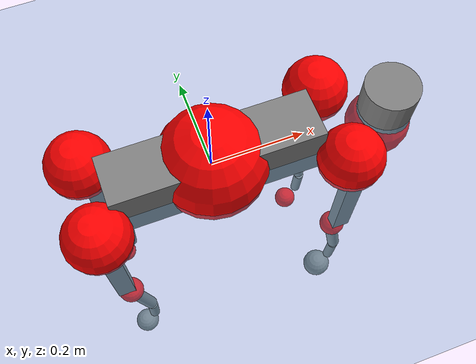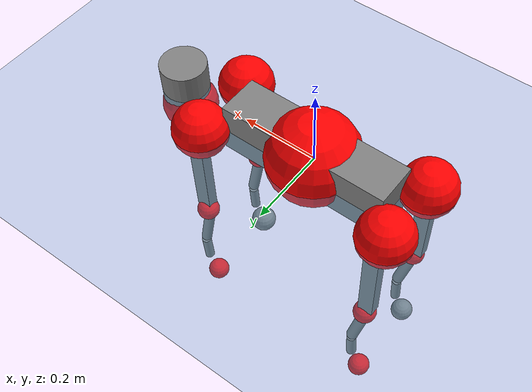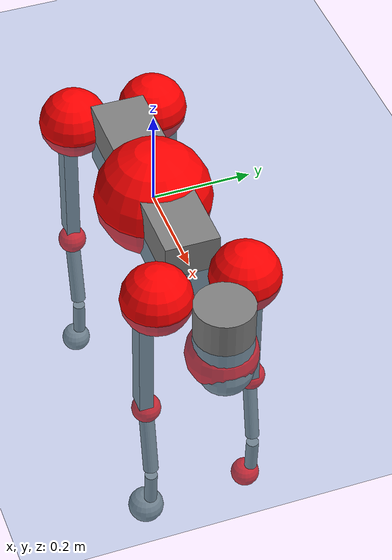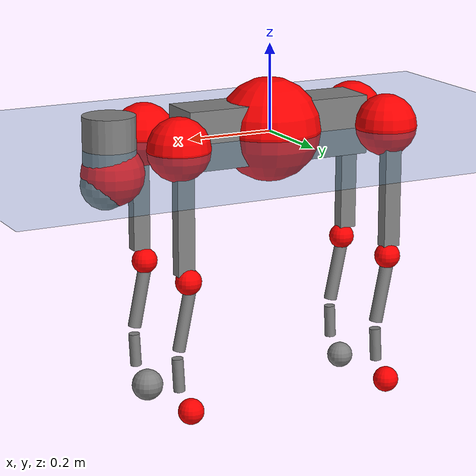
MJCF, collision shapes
<mujoco model="go2">
  <compiler angle="radian" assetdir="assets" balanceinertia="true" inertiafromgeom="false"/>

  <option timestep="0.005" density="1.2" viscosity="2e-05"/>

  <size nkey="1"/>

  <visual>
    <quality shadowsize="8192"/>
    <map shadowclip="0.5"/>
  </visual>

  <default>
    <default class="/">
      <geom contype="0" conaffinity="0" group="1" solref="-1000 -80"/>
      <site size="0.01 0.005 0.005" group="5"/>
      <general forcelimited="true" biastype="affine" gainprm="20" biasprm="0 -20 -0.5"/>
      <default class="go2">
        <joint armature="0.01" damping="0.01" frictionloss="0.2"/>
        <geom condim="1" margin="0.001"/>
        <default class="visual">
          <geom type="mesh" group="2"/>
        </default>
        <default class="collision">
          <geom group="3"/>
          <default class="foot">
            <geom size="0.022 0 0" condim="6" priority="1" friction="0.8 0.02 0.01" solimp="0.015 1 0.022"/>
          </default>
        </default>
        <default class="reward_collision_sphere">
          <geom group="5" rgba="1 0 0 1"/>
        </default>
      </default>
    </default>
  </default>

  <asset>
    <texture type="skybox" colorspace="auto" name="//unnamed_texture_0" builtin="gradient" rgb1="0.95 0.95 0.95" rgb2="0.95 0.95 0.95" width="100" height="600"/>
    <texture type="2d" colorspace="auto" name="texplane" builtin="checker" rgb1="0.345 0.575 0.748" rgb2="0.345 0.575 0.748" markrgb="1 1 1" width="512" height="512"/>
    <material name="MatPlane" class="/" texture="texplane" texuniform="true" texrepeat="2 2" specular="0.9"/>
    <material name="metal" class="/" rgba="0.9 0.95 0.95 1"/>
    <material name="black" class="/" rgba="0 0 0 1"/>
    <material name="white" class="/"/>
    <material name="gray" class="/" rgba="0.671705 0.692426 0.77427 1"/>
    <mesh name="base_0" class="/" file="base_0.obj"/>
    <mesh name="base_1" class="/" file="base_1.obj"/>
    <mesh name="base_2" class="/" file="base_2.obj"/>
    <mesh name="base_3" class="/" file="base_3.obj"/>
    <mesh name="base_4" class="/" file="base_4.obj"/>
    <mesh name="hip_0" class="/" file="hip_0.obj"/>
    <mesh name="hip_1" class="/" file="hip_1.obj"/>
    <mesh name="thigh_0" class="/" file="thigh_0.obj"/>
    <mesh name="thigh_1" class="/" file="thigh_1.obj"/>
    <mesh name="thigh_mirror_0" class="/" file="thigh_mirror_0.obj"/>
    <mesh name="thigh_mirror_1" class="/" file="thigh_mirror_1.obj"/>
    <mesh name="calf_0" class="/" file="calf_0.obj"/>
    <mesh name="calf_1" class="/" file="calf_1.obj"/>
    <mesh name="calf_mirror_0" class="/" file="calf_mirror_0.obj"/>
    <mesh name="calf_mirror_1" class="/" file="calf_mirror_1.obj"/>
    <mesh name="foot" class="/" file="foot.obj"/>
  </asset>

  <worldbody>
    <geom name="floor" class="/" size="100 100 0.125" type="plane" group="0" material="MatPlane"/>
    <light name="toplight_shadow" class="/" pos="0 0 5" dir="0.0990148 0.0990148 -0.990148" type="directional" ambient="0.04 0.04 0.04" diffuse="0.55 0.55 0.55" specular="0.12 0.12 0.12"/>
    <light name="toplight_fill" class="/" pos="0 0 5" dir="0.0990148 0.0990148 -0.990148" type="directional" castshadow="false" ambient="0.04 0.04 0.04" diffuse="0.3 0.3 0.3" specular="0.08 0.08 0.08"/>
    <body name="trunk" childclass="go2" pos="0.00176493 -5.14504e-06 0.00524621" quat="1 -0.000431097 -0.000627689 -0.000231594">
      <inertial pos="0.0350883 0.00796478 -0.00971159" quat="0.00162806 0.716548 0.00126247 0.697535" mass="11.4354" diaginertia="0.43885 0.0220337 0.12086"/>
      <joint name="//unnamed_joint_0" type="free" armature="0" damping="0" frictionloss="0"/>
      <geom name="//unnamed_geom_1" class="visual" material="black" mesh="base_0"/>
      <geom name="//unnamed_geom_2" class="visual" material="black" mesh="base_1"/>
      <geom name="//unnamed_geom_3" class="visual" material="black" mesh="base_2"/>
      <geom name="//unnamed_geom_4" class="visual" material="white" mesh="base_3"/>
      <geom name="//unnamed_geom_5" class="visual" material="gray" mesh="base_4"/>
      <geom name="trunk_1" class="collision" size="0.221409 0.0550285 0.0670936" type="box"/>
      <geom name="trunk_2" class="collision" size="0.0588541 0.0529687" pos="0.388334 0 0.0141165" type="cylinder"/>
      <geom name="trunk_3" class="collision" size="0.0553228" pos="0.399234 0 -0.084699"/>
      <geom name="//unnamed_geom_9" class="reward_collision_sphere" size="0.117708"/>
      <geom name="//unnamed_geom_10" class="reward_collision_sphere" size="0.0706249" pos="0.381521 0 -0.0635243"/>
      <site name="imu" pos="0.0151416 -0.00661172 0.0205066" size="0.0117708"/>
      <camera name="track" pos="0 -1.51404 0" quat="0.707107 0.707107 0 0" mode="trackcom"/>
      <camera name="ego_camera" pos="0.425123 0 0.0635243" quat="-0.5 -0.5 0.5 0.5"/>
      <body name="FL_hip" pos="0.264549 0.0366969 -0.00288788" quat="0.999999 0.000939583 0.000895178 -0.00106942">
        <inertial pos="-0.0154288 0.0045282 -0.00258636" quat="0.482984 0.494129 0.517211 0.50503" mass="1.19278" diaginertia="0.00449904 0.000142138 0.00259756"/>
        <joint name="FL_hip_joint" pos="0 0 0" axis="0.999562 0.0177331 -0.0237133" range="-1.09214 0.975672" armature="0.00641448" damping="0.0527041" frictionloss="0.22544"/>
        <geom name="//unnamed_geom_11" class="visual" material="metal" mesh="hip_0"/>
        <geom name="//unnamed_geom_12" class="visual" material="gray" mesh="hip_1"/>
        <geom name="//unnamed_geom_13" class="collision" size="0.0541457 0.0235416" pos="0 0.0605615 0" quat="0.707107 0.707107 0 0" type="cylinder"/>
        <geom name="//unnamed_geom_14" class="reward_collision_sphere" size="0.0706249" pos="0 0.0529913 0"/>
        <body name="FL_thigh" pos="-0.00157064 0.0690919 -0.000148447" quat="0.999999 -0.000151763 -4.50461e-05 0.00154701">
          <inertial pos="-0.00710595 -0.0172303 -0.0545236" quat="0.829145 0.0852153 -0.0214592 0.552083" mass="1.82133" diaginertia="0.031613 0.00149277 0.00498546"/>
          <joint name="FL_thigh_joint" pos="0 0 0" axis="-0.0080735 0.99884 0.0474672" range="-1.57061 3.51046" armature="0.0123312" damping="0.0124525" frictionloss="0.327782"/>
          <geom name="//unnamed_geom_15" class="visual" material="metal" mesh="thigh_0"/>
          <geom name="//unnamed_geom_16" class="visual" material="gray" mesh="thigh_1"/>
          <geom name="//unnamed_geom_17" class="collision" size="0.125359 0.0144192 0.0200104" pos="0 0 -0.150341" quat="0.707107 0 0.707107 0" type="box"/>
          <body name="FL_calf" pos="-0.00679821 0.00703543 -0.290714" quat="0.999994 -0.000749091 0.00105735 -0.00314241">
            <inertial pos="0.0083571 5.67914e-06 -0.199598" quat="0.710935 0.00148365 -0.00437755 0.703243" mass="0.40091" diaginertia="0.00726923 0.000366556 0.000309161"/>
            <joint name="FL_calf_joint" pos="0 0 0" axis="0.0662786 0.996461 -0.0516915" range="-2.62623 -0.870952" armature="0.0101374" damping="0.0439769" frictionloss="0.182758"/>
            <geom name="//unnamed_geom_18" class="visual" material="gray" mesh="calf_0"/>
            <geom name="//unnamed_geom_19" class="visual" material="black" mesh="calf_1"/>
            <geom name="FL_calf0" class="collision" size="0.014125 0.0706249" pos="0.0109006 0 -0.084699" quat="0.994493 0 -0.104807 0" type="cylinder"/>
            <geom name="//unnamed_geom_21" class="collision" size="0.0129479 0.0382551" pos="0.0272515 0 -0.208924" quat="0.999688 0 0.0249974 0" type="cylinder"/>
            <geom name="//unnamed_geom_22" class="visual" pos="0 0 -0.300682" quat="1 0 0 0" material="black" mesh="foot"/>
            <geom name="FL_foot" class="foot" size="0.0226576" pos="-0.00272515 0 -0.300682"/>
            <geom name="//unnamed_geom_24" class="reward_collision_sphere" size="0.029427"/>
            <geom name="//unnamed_geom_25" class="reward_collision_sphere" size="0.029427" pos="-0.00272515 0 -0.300682"/>
            <site name="FL_foot" class="foot" pos="-0.00272515 0 -0.300682" size="0.0117708"/>
          </body>
        </body>
      </body>
      <body name="FR_hip" pos="0.268152 -0.0352478 -0.00257326" quat="1 6.47722e-06 -2.63941e-06 -1.39132e-06">
        <inertial pos="-0.0150558 -0.00283307 0.00152367" quat="0.496293 0.500357 0.503266 0.500059" mass="1.04515" diaginertia="0.00403827 0.000133556 0.00252919"/>
        <joint name="FR_hip_joint" pos="0 0 0" axis="0.99996 -0.00895599 0.00049012" stiffness="0.0058554" range="-0.882149 1.06899" armature="0.0160615" damping="0" frictionloss="0.329287"/>
        <geom name="//unnamed_geom_26" class="visual" pos="0 -5.70289e-09 -2.44608e-07" quat="4.63268e-05 1 0 0" material="metal" mesh="hip_0"/>
        <geom name="//unnamed_geom_27" class="visual" pos="0 -9.24506e-09 6.0501e-07" quat="4.63268e-05 1 0 0" material="gray" mesh="hip_1"/>
        <geom name="//unnamed_geom_28" class="collision" size="0.0541457 0.0235416" pos="0 -0.0605615 0" quat="0.707107 0.707107 0 0" type="cylinder"/>
        <geom name="//unnamed_geom_29" class="reward_collision_sphere" size="0.0706249" pos="0 -0.0529913 0"/>
        <body name="FR_thigh" pos="0.00222074 -0.0811863 0.00308693" quat="1 -1.80188e-05 1.04966e-05 3.2246e-07">
          <inertial pos="-0.00556086 0.018058 -0.0479959" quat="0.544527 0.00868123 0.107863 0.831733" mass="2.24861" diaginertia="0.0307426 0.00147572 0.00513283"/>
          <joint name="FR_thigh_joint" pos="0 0 0" axis="0.0304026 -0.999501 -0.0085124" stiffness="0.0169912" range="-3.68687 1.47338" armature="0.0117121" damping="0.0374657" frictionloss="0.105919"/>
          <geom name="//unnamed_geom_30" class="visual" material="metal" mesh="thigh_mirror_0"/>
          <geom name="//unnamed_geom_31" class="visual" material="gray" mesh="thigh_mirror_1"/>
          <geom name="//unnamed_geom_32" class="collision" size="0.125359 0.0144192 0.0200104" pos="0 0 -0.150341" quat="0.707107 0 0.707107 0" type="box"/>
          <body name="FR_calf" pos="-0.00785228 0.00875882 -0.302682" quat="1 -0.000675648 2.42598e-06 -0.000506776">
            <inertial pos="0.00773238 -0.00131488 -0.208296" quat="0.712711 0.00892982 0.00622384 0.701373" mass="0.389366" diaginertia="0.00787839 0.000395592 0.000306215"/>
            <joint name="FR_calf_joint" pos="0 0 0" axis="0.0069892 -0.999867 -0.0147238" stiffness="0.00409175" range="0.917931 2.63212" armature="0.0122525" damping="0.0123364" frictionloss="0.345816"/>
            <geom name="//unnamed_geom_33" class="visual" material="gray" mesh="calf_mirror_0"/>
            <geom name="//unnamed_geom_34" class="visual" material="black" mesh="calf_mirror_1"/>
            <geom name="FR_calf0" class="collision" size="0.0153021 0.0706249" pos="0.0136257 0 -0.084699" quat="0.995004 0 -0.0998334 0" type="cylinder"/>
            <geom name="//unnamed_geom_36" class="collision" size="0.0129479 0.0382551" pos="0.0272515 0 -0.208924" quat="0.999688 0 0.0249974 0" type="cylinder"/>
            <geom name="//unnamed_geom_37" class="visual" pos="0 0 -0.300682" quat="1 0 0 0" material="black" mesh="foot"/>
            <geom name="FR_foot" class="foot" size="0.03653" pos="-0.00272515 0 -0.300682"/>
            <geom name="//unnamed_geom_39" class="reward_collision_sphere" size="0.029427"/>
            <geom name="//unnamed_geom_40" class="reward_collision_sphere" size="0.029427" pos="-0.00272515 0 -0.300682"/>
            <site name="FR_foot" class="foot" pos="-0.00272515 0 -0.300682" size="0.0117708"/>
          </body>
        </body>
      </body>
      <body name="RL_hip" pos="-0.253816 0.0330354 0.00122077" quat="1 0.000104161 4.48733e-06 -9.97421e-05">
        <inertial pos="0.00489206 -0.00690591 0.0022218" quat="0.491828 0.509777 0.50578 0.492361" mass="1.11736" diaginertia="0.00459831 0.000142504 0.00322484"/>
        <joint name="RL_hip_joint" pos="0 0 0" axis="-0.999985 0.0054072 -0.000485082" stiffness="0.00756148" range="-1.0765 1.26685" armature="0.0169574" damping="0.0258871" frictionloss="0.213427"/>
        <geom name="//unnamed_geom_41" class="visual" pos="4.27529e-10 0 8.38056e-08" quat="4.63268e-05 0 1 0" material="metal" mesh="hip_0"/>
        <geom name="//unnamed_geom_42" class="visual" pos="6.93076e-10 0 7.43237e-08" quat="4.63268e-05 0 1 0" material="gray" mesh="hip_1"/>
        <geom name="//unnamed_geom_43" class="collision" size="0.0541457 0.0235416" pos="0 0.0605615 0" quat="0.707107 0.707107 0 0" type="cylinder"/>
        <geom name="//unnamed_geom_44" class="reward_collision_sphere" size="0.0706249" pos="0 0.0529913 0"/>
        <body name="RL_thigh" pos="0.00455753 0.0830518 8.68921e-05" quat="1 3.5254e-05 -3.06991e-05 -3.71213e-05">
          <inertial pos="-0.00468817 -0.0236324 -0.0473039" quat="0.83188 0.0836092 -0.0118877 0.548493" mass="1.88362" diaginertia="0.0280366 0.0015224 0.00487083"/>
          <joint name="RL_thigh_joint" pos="0 0 0" axis="0.0357059 0.999352 -0.00459137" range="-0.493545 4.5014" armature="0.0135703" damping="0.0213391" frictionloss="0.220753"/>
          <geom name="//unnamed_geom_45" class="visual" material="metal" mesh="thigh_0"/>
          <geom name="//unnamed_geom_46" class="visual" material="gray" mesh="thigh_1"/>
          <geom name="//unnamed_geom_47" class="collision" size="0.125359 0.0144192 0.0200104" pos="0 0 -0.150341" quat="0.707107 0 0.707107 0" type="box"/>
          <body name="RL_calf" pos="0.00466178 0.00287969 -0.299156" quat="1 0.000913922 0.000116533 3.90709e-05">
            <inertial pos="0.00892764 0.000125888 -0.20185" quat="0.693453 -0.0475517 -0.00456478 0.718916" mass="0.400083" diaginertia="0.00724681 0.00037496 0.000339353"/>
            <joint name="RL_calf_joint" pos="0 0 0" axis="0.0291822 0.999562 -0.00492291" stiffness="0.00507023" range="-2.73148 -0.830749" armature="0.0151064" damping="0" frictionloss="0.179577"/>
            <geom name="//unnamed_geom_48" class="visual" material="gray" mesh="calf_0"/>
            <geom name="//unnamed_geom_49" class="visual" material="black" mesh="calf_1"/>
            <geom name="RL_calf0" class="collision" size="0.0153021 0.0706249" pos="0.0136257 0 -0.084699" quat="0.995004 0 -0.0998334 0" type="cylinder"/>
            <geom name="//unnamed_geom_51" class="collision" size="0.0129479 0.0382551" pos="0.0272515 0 -0.208924" quat="0.999688 0 0.0249974 0" type="cylinder"/>
            <geom name="//unnamed_geom_52" class="visual" pos="0 0 -0.300682" quat="1 0 0 0" material="black" mesh="foot"/>
            <geom name="RL_foot" class="foot" size="0.0153211" pos="-0.00272515 0 -0.300682"/>
            <geom name="//unnamed_geom_54" class="reward_collision_sphere" size="0.029427"/>
            <geom name="//unnamed_geom_55" class="reward_collision_sphere" size="0.029427" pos="-0.00272515 0 -0.300682"/>
            <site name="RL_foot" class="foot" pos="-0.00272515 0 -0.300682" size="0.0117708"/>
          </body>
        </body>
      </body>
      <body name="RR_hip" pos="-0.260876 -0.0268128 0.00264678" quat="0.999995 -0.000251595 -0.00204933 0.00234283">
        <inertial pos="0.0159649 -0.00308747 -0.00763051" quat="0.499518 0.495951 0.498203 0.506269" mass="1.13937" diaginertia="0.00435936 0.000154675 0.00311992"/>
        <joint name="RR_hip_joint" pos="0 0 0" axis="-0.999993 0.00365259 -0.00128102" stiffness="0.0147022" range="-0.903995 0.852027" armature="0.011997" damping="0.0344342" frictionloss="0.241956"/>
        <geom name="//unnamed_geom_56" class="visual" pos="-4.48494e-10 -5.70289e-09 3.28414e-07" quat="2.14617e-09 4.63268e-05 4.63268e-05 -1" material="metal" mesh="hip_0"/>
        <geom name="//unnamed_geom_57" class="visual" pos="-6.41223e-10 -9.24506e-09 -5.30687e-07" quat="2.14617e-09 4.63268e-05 4.63268e-05 -1" material="gray" mesh="hip_1"/>
        <geom name="//unnamed_geom_58" class="collision" size="0.0541457 0.0235416" pos="0 -0.0605615 0" quat="0.707107 0.707107 0 0" type="cylinder"/>
        <geom name="//unnamed_geom_59" class="reward_collision_sphere" size="0.0706249" pos="0 -0.0529913 0"/>
        <body name="RR_thigh" pos="0.00279312 -0.0694857 -0.00860908" quat="1 0.00032571 -0.000592794 -0.000269674">
          <inertial pos="-0.0105365 0.0165478 -0.0453032" quat="0.550641 -0.0199498 0.087038 0.829952" mass="2.38026" diaginertia="0.0345447 0.00168217 0.00560486"/>
          <joint name="RR_thigh_joint" pos="0 0 0" axis="-0.00854909 -0.99943 0.0326669" range="-4.50486 0.531332" armature="0.0128381" damping="0.00978417" frictionloss="0.245728"/>
          <geom name="//unnamed_geom_60" class="visual" material="metal" mesh="thigh_mirror_0"/>
          <geom name="//unnamed_geom_61" class="visual" material="gray" mesh="thigh_mirror_1"/>
          <geom name="//unnamed_geom_62" class="collision" size="0.125359 0.0144192 0.0200104" pos="0 0 -0.150341" quat="0.707107 0 0.707107 0" type="box"/>
          <body name="RR_calf" pos="0.00830467 -0.000537286 -0.299337" quat="0.999999 0.000189668 -0.00141803 0.000124119">
            <inertial pos="0.0102758 0.0011663 -0.197937" quat="0.699106 -0.0119914 -0.0331439 0.714149" mass="0.410353" diaginertia="0.00748645 0.000339859 0.000311909"/>
            <joint name="RR_calf_joint" pos="0 0 0" axis="-0.0129797 -0.999744 0.0185422" range="0.826508 2.7386" armature="0.0173567" damping="0.00819114" frictionloss="0.231404"/>
            <geom name="//unnamed_geom_63" class="visual" material="gray" mesh="calf_mirror_0"/>
            <geom name="//unnamed_geom_64" class="visual" material="black" mesh="calf_mirror_1"/>
            <geom name="RR_calf0" class="collision" size="0.0153021 0.0706249" pos="0.0136257 0 -0.084699" quat="0.995004 0 -0.0998334 0" type="cylinder"/>
            <geom name="//unnamed_geom_66" class="collision" size="0.0129479 0.0382551" pos="0.0272515 0 -0.208924" quat="0.999688 0 0.0249974 0" type="cylinder"/>
            <geom name="//unnamed_geom_67" class="visual" pos="0 0 -0.300682" quat="1 0 0 0" material="black" mesh="foot"/>
            <geom name="RR_foot" class="foot" size="0.0304589" pos="-0.00272515 0 -0.300682"/>
            <geom name="//unnamed_geom_69" class="reward_collision_sphere" size="0.029427"/>
            <geom name="//unnamed_geom_70" class="reward_collision_sphere" size="0.029427" pos="-0.00272515 0 -0.300682"/>
            <site name="RR_foot" class="foot" pos="-0.00272515 0 -0.300682" size="0.0117708"/>
          </body>
        </body>
      </body>
    </body>
  </worldbody>

  <contact>
    <pair class="/" geom1="floor" geom2="FL_foot" name="//unnamed_contact_0"/>
    <pair class="/" geom1="floor" geom2="FR_foot" name="//unnamed_contact_1"/>
    <pair class="/" geom1="floor" geom2="RL_foot" name="//unnamed_contact_2"/>
    <pair class="/" geom1="floor" geom2="RR_foot" name="//unnamed_contact_3"/>
  </contact>

  <actuator>
    <general name="FL_hip" class="/" joint="FL_hip_joint" forcerange="-26.791 26.791" gainprm="23.915" biasprm="0 -23.915 -0.584971"/>
    <general name="FL_thigh" class="/" joint="FL_thigh_joint" forcerange="-31.834 31.834" gainprm="23.915" biasprm="0 -23.915 -0.584971"/>
    <general name="FL_calf" class="/" joint="FL_calf_joint" forcerange="-53.4226 53.4226" gainprm="23.915" biasprm="0 -23.915 -0.584971"/>
    <general name="FR_hip" class="/" joint="FR_hip_joint" forcerange="-32.4143 32.4143" gainprm="23.915" biasprm="0 -23.915 -0.584971"/>
    <general name="FR_thigh" class="/" joint="FR_thigh_joint" forcerange="-25.2589 25.2589" gainprm="23.915" biasprm="0 -23.915 -0.584971"/>
    <general name="FR_calf" class="/" joint="FR_calf_joint" forcerange="-68.7434 68.7434" gainprm="23.915" biasprm="0 -23.915 -0.584971"/>
    <general name="RL_hip" class="/" joint="RL_hip_joint" forcerange="-27.7798 27.7798" gainprm="23.915" biasprm="0 -23.915 -0.584971"/>
    <general name="RL_thigh" class="/" joint="RL_thigh_joint" forcerange="-36.1341 36.1341" gainprm="23.915" biasprm="0 -23.915 -0.584971"/>
    <general name="RL_calf" class="/" joint="RL_calf_joint" forcerange="-53.1482 53.1482" gainprm="23.915" biasprm="0 -23.915 -0.584971"/>
    <general name="RR_hip" class="/" joint="RR_hip_joint" forcerange="-28.9241 28.9241" gainprm="23.915" biasprm="0 -23.915 -0.584971"/>
    <general name="RR_thigh" class="/" joint="RR_thigh_joint" forcerange="-37.5705 37.5705" gainprm="23.915" biasprm="0 -23.915 -0.584971"/>
    <general name="RR_calf" class="/" joint="RR_calf_joint" forcerange="-39.3175 39.3175" gainprm="23.915" biasprm="0 -23.915 -0.584971"/>
  </actuator>

  <sensor>
    <gyro site="imu" name="imu_angular_velocity"/>
    <velocimeter site="imu" name="imu_linear_velocity"/>
    <framelinvel objtype="site" objname="FL_foot" name="FL_foot_global_linear_velocity"/>
    <framelinvel objtype="site" objname="FR_foot" name="FR_foot_global_linear_velocity"/>
    <framelinvel objtype="site" objname="RL_foot" name="RL_foot_global_linear_velocity"/>
    <framelinvel objtype="site" objname="RR_foot" name="RR_foot_global_linear_velocity"/>
  </sensor>

  <keyframe>
    <key name="home" qpos="0 0 0.325 1 0 0 0 0.1 0.8 -1.5 -0.1 -0.8 1.5 -0.1 0.8 -1.5 0.1 -0.8 1.5"/>
  </keyframe>
</mujoco>
